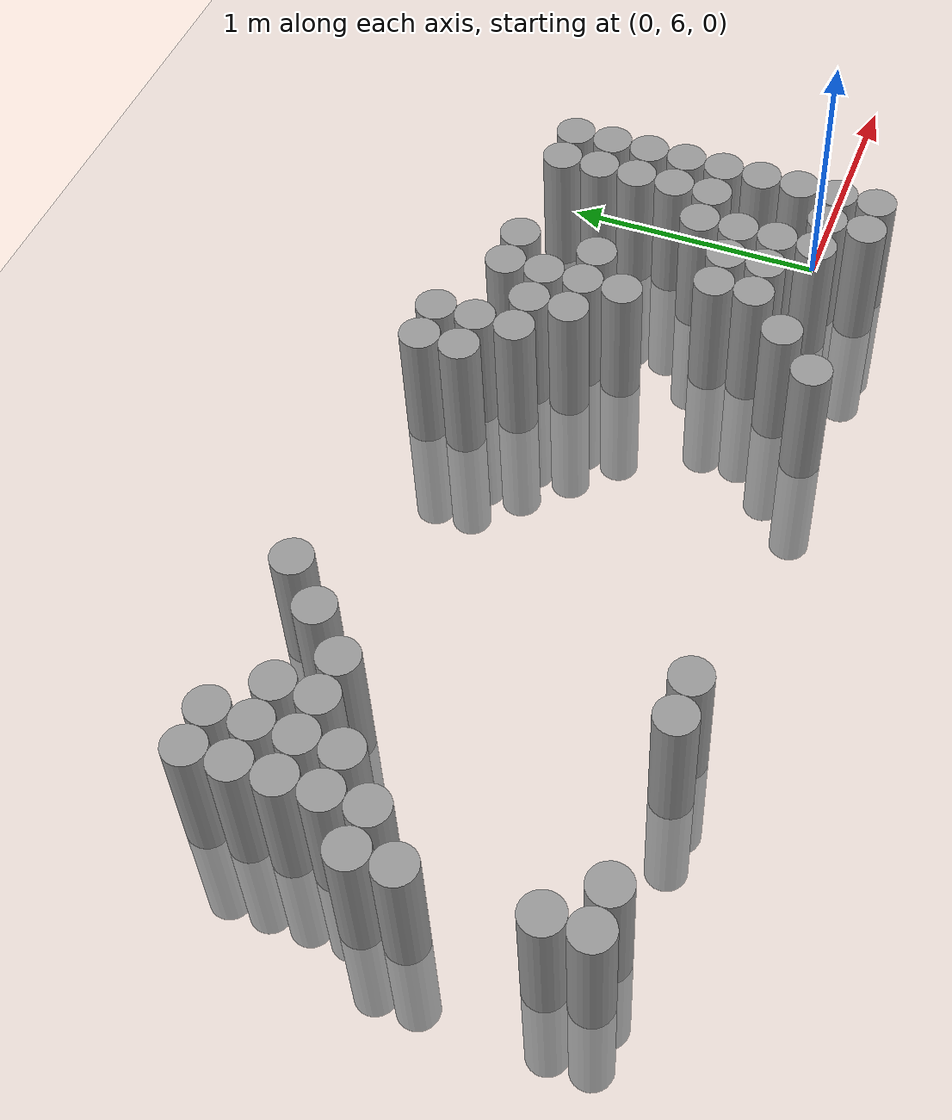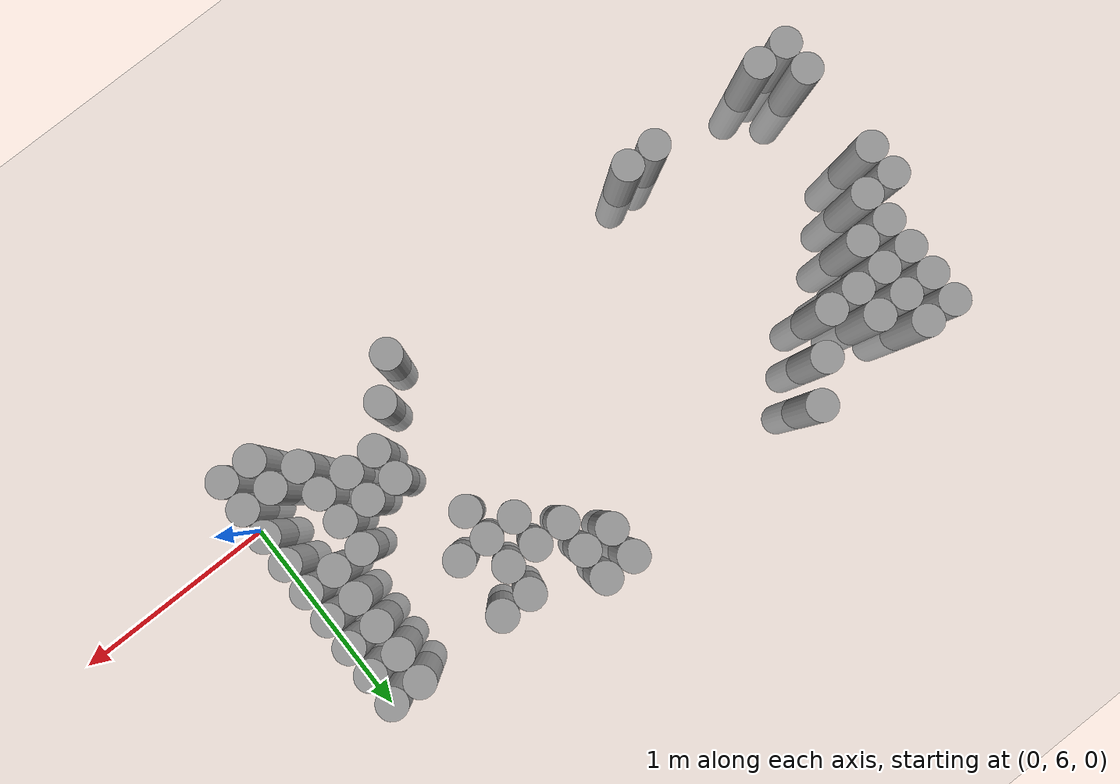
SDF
<sdf version="1.6">
 <world name="default">
  <model name="ground_plane">
   <static>1</static>
   <static>1</static>
   <link name="link">
    <collision name="collision">
     <geometry><plane><normal>0 0 1</normal><size>100 100</size></plane></geometry>
     <surface><friction><ode><mu>100</mu><mu2>50</mu2></ode></friction></surface>
    </collision>
    <visual name="visual">
     <cast_shadows>0</cast_shadows>
     <geometry><plane><normal>0 0 1</normal><size>100 100</size></plane></geometry>
     <material>
      <script><uri>file://media/materials/scripts/gazebo.material</uri><name>Gazebo/Grey</name></script>
     </material>
    </visual>
   </link>
  </model>
  <model name="unit_cylinder_172">
   <static>1</static>
   <pose>-3.225000 5.775000 0.000000 0.000000 0.000000 0.000000</pose>
   <link name="link">
    <inertial>
     <mass>1</mass>
     <inertia><ixx>0.145833</ixx><ixy>0</ixy><ixz>0</ixz><iyy>0.145833</iyy><iyz>0</iyz><izz>0.125</izz></inertia>
    </inertial>
    <collision name="collision">
     <geometry><cylinder><radius>0.075000</radius><length>1</length></cylinder></geometry>
    </collision>
    <visual name="visual">
     <geometry><cylinder><radius>0.075000</radius><length>1</length></cylinder></geometry>
     <material>
      <script><name>Gazebo/Grey</name><uri>file://media/materials/scripts/gazebo.material</uri></script>
     </material>
    </visual>
   </link>
  </model>
  <model name="unit_cylinder_173">
   <static>1</static>
   <pose>-3.225000 5.925000 0.000000 0.000000 0.000000 0.000000</pose>
   <link name="link">
    <inertial>
     <mass>1</mass>
     <inertia><ixx>0.145833</ixx><ixy>0</ixy><ixz>0</ixz><iyy>0.145833</iyy><iyz>0</iyz><izz>0.125</izz></inertia>
    </inertial>
    <collision name="collision">
     <geometry><cylinder><radius>0.075000</radius><length>1</length></cylinder></geometry>
    </collision>
    <visual name="visual">
     <geometry><cylinder><radius>0.075000</radius><length>1</length></cylinder></geometry>
     <material>
      <script><name>Gazebo/Grey</name><uri>file://media/materials/scripts/gazebo.material</uri></script>
     </material>
    </visual>
   </link>
  </model>
  <model name="unit_cylinder_174">
   <static>1</static>
   <pose>-3.225000 6.375000 0.000000 0.000000 0.000000 0.000000</pose>
   <link name="link">
    <inertial>
     <mass>1</mass>
     <inertia><ixx>0.145833</ixx><ixy>0</ixy><ixz>0</ixz><iyy>0.145833</iyy><iyz>0</iyz><izz>0.125</izz></inertia>
    </inertial>
    <collision name="collision">
     <geometry><cylinder><radius>0.075000</radius><length>1</length></cylinder></geometry>
    </collision>
    <visual name="visual">
     <geometry><cylinder><radius>0.075000</radius><length>1</length></cylinder></geometry>
     <material>
      <script><name>Gazebo/Grey</name><uri>file://media/materials/scripts/gazebo.material</uri></script>
     </material>
    </visual>
   </link>
  </model>
  <model name="unit_cylinder_175">
   <static>1</static>
   <pose>-3.225000 6.525000 0.000000 0.000000 0.000000 0.000000</pose>
   <link name="link">
    <inertial>
     <mass>1</mass>
     <inertia><ixx>0.145833</ixx><ixy>0</ixy><ixz>0</ixz><iyy>0.145833</iyy><iyz>0</iyz><izz>0.125</izz></inertia>
    </inertial>
    <collision name="collision">
     <geometry><cylinder><radius>0.075000</radius><length>1</length></cylinder></geometry>
    </collision>
    <visual name="visual">
     <geometry><cylinder><radius>0.075000</radius><length>1</length></cylinder></geometry>
     <material>
      <script><name>Gazebo/Grey</name><uri>file://media/materials/scripts/gazebo.material</uri></script>
     </material>
    </visual>
   </link>
  </model>
  <model name="unit_cylinder_178">
   <static>1</static>
   <pose>-3.075000 5.775000 0.000000 0.000000 0.000000 0.000000</pose>
   <link name="link">
    <inertial>
     <mass>1</mass>
     <inertia><ixx>0.145833</ixx><ixy>0</ixy><ixz>0</ixz><iyy>0.145833</iyy><iyz>0</iyz><izz>0.125</izz></inertia>
    </inertial>
    <collision name="collision">
     <geometry><cylinder><radius>0.075000</radius><length>1</length></cylinder></geometry>
    </collision>
    <visual name="visual">
     <geometry><cylinder><radius>0.075000</radius><length>1</length></cylinder></geometry>
     <material>
      <script><name>Gazebo/Grey</name><uri>file://media/materials/scripts/gazebo.material</uri></script>
     </material>
    </visual>
   </link>
  </model>
  <model name="unit_cylinder_179">
   <static>1</static>
   <pose>-3.075000 6.525000 0.000000 0.000000 0.000000 0.000000</pose>
   <link name="link">
    <inertial>
     <mass>1</mass>
     <inertia><ixx>0.145833</ixx><ixy>0</ixy><ixz>0</ixz><iyy>0.145833</iyy><iyz>0</iyz><izz>0.125</izz></inertia>
    </inertial>
    <collision name="collision">
     <geometry><cylinder><radius>0.075000</radius><length>1</length></cylinder></geometry>
    </collision>
    <visual name="visual">
     <geometry><cylinder><radius>0.075000</radius><length>1</length></cylinder></geometry>
     <material>
      <script><name>Gazebo/Grey</name><uri>file://media/materials/scripts/gazebo.material</uri></script>
     </material>
    </visual>
   </link>
  </model>
  <model name="unit_cylinder_180">
   <static>1</static>
   <pose>-3.075000 6.675000 0.000000 0.000000 0.000000 0.000000</pose>
   <link name="link">
    <inertial>
     <mass>1</mass>
     <inertia><ixx>0.145833</ixx><ixy>0</ixy><ixz>0</ixz><iyy>0.145833</iyy><iyz>0</iyz><izz>0.125</izz></inertia>
    </inertial>
    <collision name="collision">
     <geometry><cylinder><radius>0.075000</radius><length>1</length></cylinder></geometry>
    </collision>
    <visual name="visual">
     <geometry><cylinder><radius>0.075000</radius><length>1</length></cylinder></geometry>
     <material>
      <script><name>Gazebo/Grey</name><uri>file://media/materials/scripts/gazebo.material</uri></script>
     </material>
    </visual>
   </link>
  </model>
  <model name="unit_cylinder_181">
   <static>1</static>
   <pose>-3.075000 6.825000 0.000000 0.000000 0.000000 0.000000</pose>
   <link name="link">
    <inertial>
     <mass>1</mass>
     <inertia><ixx>0.145833</ixx><ixy>0</ixy><ixz>0</ixz><iyy>0.145833</iyy><iyz>0</iyz><izz>0.125</izz></inertia>
    </inertial>
    <collision name="collision">
     <geometry><cylinder><radius>0.075000</radius><length>1</length></cylinder></geometry>
    </collision>
    <visual name="visual">
     <geometry><cylinder><radius>0.075000</radius><length>1</length></cylinder></geometry>
     <material>
      <script><name>Gazebo/Grey</name><uri>file://media/materials/scripts/gazebo.material</uri></script>
     </material>
    </visual>
   </link>
  </model>
  <model name="unit_cylinder_182">
   <static>1</static>
   <pose>-3.075000 6.975000 0.000000 0.000000 0.000000 0.000000</pose>
   <link name="link">
    <inertial>
     <mass>1</mass>
     <inertia><ixx>0.145833</ixx><ixy>0</ixy><ixz>0</ixz><iyy>0.145833</iyy><iyz>0</iyz><izz>0.125</izz></inertia>
    </inertial>
    <collision name="collision">
     <geometry><cylinder><radius>0.075000</radius><length>1</length></cylinder></geometry>
    </collision>
    <visual name="visual">
     <geometry><cylinder><radius>0.075000</radius><length>1</length></cylinder></geometry>
     <material>
      <script><name>Gazebo/Grey</name><uri>file://media/materials/scripts/gazebo.material</uri></script>
     </material>
    </visual>
   </link>
  </model>
  <model name="unit_cylinder_183">
   <static>1</static>
   <pose>-3.075000 7.125000 0.000000 0.000000 0.000000 0.000000</pose>
   <link name="link">
    <inertial>
     <mass>1</mass>
     <inertia><ixx>0.145833</ixx><ixy>0</ixy><ixz>0</ixz><iyy>0.145833</iyy><iyz>0</iyz><izz>0.125</izz></inertia>
    </inertial>
    <collision name="collision">
     <geometry><cylinder><radius>0.075000</radius><length>1</length></cylinder></geometry>
    </collision>
    <visual name="visual">
     <geometry><cylinder><radius>0.075000</radius><length>1</length></cylinder></geometry>
     <material>
      <script><name>Gazebo/Grey</name><uri>file://media/materials/scripts/gazebo.material</uri></script>
     </material>
    </visual>
   </link>
  </model>
  <model name="unit_cylinder_190">
   <static>1</static>
   <pose>-2.925000 6.675000 0.000000 0.000000 0.000000 0.000000</pose>
   <link name="link">
    <inertial>
     <mass>1</mass>
     <inertia><ixx>0.145833</ixx><ixy>0</ixy><ixz>0</ixz><iyy>0.145833</iyy><iyz>0</iyz><izz>0.125</izz></inertia>
    </inertial>
    <collision name="collision">
     <geometry><cylinder><radius>0.075000</radius><length>1</length></cylinder></geometry>
    </collision>
    <visual name="visual">
     <geometry><cylinder><radius>0.075000</radius><length>1</length></cylinder></geometry>
     <material>
      <script><name>Gazebo/Grey</name><uri>file://media/materials/scripts/gazebo.material</uri></script>
     </material>
    </visual>
   </link>
  </model>
  <model name="unit_cylinder_191">
   <static>1</static>
   <pose>-2.925000 6.825000 0.000000 0.000000 0.000000 0.000000</pose>
   <link name="link">
    <inertial>
     <mass>1</mass>
     <inertia><ixx>0.145833</ixx><ixy>0</ixy><ixz>0</ixz><iyy>0.145833</iyy><iyz>0</iyz><izz>0.125</izz></inertia>
    </inertial>
    <collision name="collision">
     <geometry><cylinder><radius>0.075000</radius><length>1</length></cylinder></geometry>
    </collision>
    <visual name="visual">
     <geometry><cylinder><radius>0.075000</radius><length>1</length></cylinder></geometry>
     <material>
      <script><name>Gazebo/Grey</name><uri>file://media/materials/scripts/gazebo.material</uri></script>
     </material>
    </visual>
   </link>
  </model>
  <model name="unit_cylinder_192">
   <static>1</static>
   <pose>-2.925000 6.975000 0.000000 0.000000 0.000000 0.000000</pose>
   <link name="link">
    <inertial>
     <mass>1</mass>
     <inertia><ixx>0.145833</ixx><ixy>0</ixy><ixz>0</ixz><iyy>0.145833</iyy><iyz>0</iyz><izz>0.125</izz></inertia>
    </inertial>
    <collision name="collision">
     <geometry><cylinder><radius>0.075000</radius><length>1</length></cylinder></geometry>
    </collision>
    <visual name="visual">
     <geometry><cylinder><radius>0.075000</radius><length>1</length></cylinder></geometry>
     <material>
      <script><name>Gazebo/Grey</name><uri>file://media/materials/scripts/gazebo.material</uri></script>
     </material>
    </visual>
   </link>
  </model>
  <model name="unit_cylinder_193">
   <static>1</static>
   <pose>-2.925000 7.125000 0.000000 0.000000 0.000000 0.000000</pose>
   <link name="link">
    <inertial>
     <mass>1</mass>
     <inertia><ixx>0.145833</ixx><ixy>0</ixy><ixz>0</ixz><iyy>0.145833</iyy><iyz>0</iyz><izz>0.125</izz></inertia>
    </inertial>
    <collision name="collision">
     <geometry><cylinder><radius>0.075000</radius><length>1</length></cylinder></geometry>
    </collision>
    <visual name="visual">
     <geometry><cylinder><radius>0.075000</radius><length>1</length></cylinder></geometry>
     <material>
      <script><name>Gazebo/Grey</name><uri>file://media/materials/scripts/gazebo.material</uri></script>
     </material>
    </visual>
   </link>
  </model>
  <model name="unit_cylinder_197">
   <static>1</static>
   <pose>-2.775000 6.825000 0.000000 0.000000 0.000000 0.000000</pose>
   <link name="link">
    <inertial>
     <mass>1</mass>
     <inertia><ixx>0.145833</ixx><ixy>0</ixy><ixz>0</ixz><iyy>0.145833</iyy><iyz>0</iyz><izz>0.125</izz></inertia>
    </inertial>
    <collision name="collision">
     <geometry><cylinder><radius>0.075000</radius><length>1</length></cylinder></geometry>
    </collision>
    <visual name="visual">
     <geometry><cylinder><radius>0.075000</radius><length>1</length></cylinder></geometry>
     <material>
      <script><name>Gazebo/Grey</name><uri>file://media/materials/scripts/gazebo.material</uri></script>
     </material>
    </visual>
   </link>
  </model>
  <model name="unit_cylinder_198">
   <static>1</static>
   <pose>-2.775000 6.975000 0.000000 0.000000 0.000000 0.000000</pose>
   <link name="link">
    <inertial>
     <mass>1</mass>
     <inertia><ixx>0.145833</ixx><ixy>0</ixy><ixz>0</ixz><iyy>0.145833</iyy><iyz>0</iyz><izz>0.125</izz></inertia>
    </inertial>
    <collision name="collision">
     <geometry><cylinder><radius>0.075000</radius><length>1</length></cylinder></geometry>
    </collision>
    <visual name="visual">
     <geometry><cylinder><radius>0.075000</radius><length>1</length></cylinder></geometry>
     <material>
      <script><name>Gazebo/Grey</name><uri>file://media/materials/scripts/gazebo.material</uri></script>
     </material>
    </visual>
   </link>
  </model>
  <model name="unit_cylinder_203">
   <static>1</static>
   <pose>-2.625000 6.825000 0.000000 0.000000 0.000000 0.000000</pose>
   <link name="link">
    <inertial>
     <mass>1</mass>
     <inertia><ixx>0.145833</ixx><ixy>0</ixy><ixz>0</ixz><iyy>0.145833</iyy><iyz>0</iyz><izz>0.125</izz></inertia>
    </inertial>
    <collision name="collision">
     <geometry><cylinder><radius>0.075000</radius><length>1</length></cylinder></geometry>
    </collision>
    <visual name="visual">
     <geometry><cylinder><radius>0.075000</radius><length>1</length></cylinder></geometry>
     <material>
      <script><name>Gazebo/Grey</name><uri>file://media/materials/scripts/gazebo.material</uri></script>
     </material>
    </visual>
   </link>
  </model>
  <model name="unit_cylinder_210">
   <static>1</static>
   <pose>-2.475000 5.775000 0.000000 0.000000 0.000000 0.000000</pose>
   <link name="link">
    <inertial>
     <mass>1</mass>
     <inertia><ixx>0.145833</ixx><ixy>0</ixy><ixz>0</ixz><iyy>0.145833</iyy><iyz>0</iyz><izz>0.125</izz></inertia>
    </inertial>
    <collision name="collision">
     <geometry><cylinder><radius>0.075000</radius><length>1</length></cylinder></geometry>
    </collision>
    <visual name="visual">
     <geometry><cylinder><radius>0.075000</radius><length>1</length></cylinder></geometry>
     <material>
      <script><name>Gazebo/Grey</name><uri>file://media/materials/scripts/gazebo.material</uri></script>
     </material>
    </visual>
   </link>
  </model>
  <model name="unit_cylinder_211">
   <static>1</static>
   <pose>-2.475000 6.975000 0.000000 0.000000 0.000000 0.000000</pose>
   <link name="link">
    <inertial>
     <mass>1</mass>
     <inertia><ixx>0.145833</ixx><ixy>0</ixy><ixz>0</ixz><iyy>0.145833</iyy><iyz>0</iyz><izz>0.125</izz></inertia>
    </inertial>
    <collision name="collision">
     <geometry><cylinder><radius>0.075000</radius><length>1</length></cylinder></geometry>
    </collision>
    <visual name="visual">
     <geometry><cylinder><radius>0.075000</radius><length>1</length></cylinder></geometry>
     <material>
      <script><name>Gazebo/Grey</name><uri>file://media/materials/scripts/gazebo.material</uri></script>
     </material>
    </visual>
   </link>
  </model>
  <model name="unit_cylinder_217">
   <static>1</static>
   <pose>-2.325000 5.775000 0.000000 0.000000 0.000000 0.000000</pose>
   <link name="link">
    <inertial>
     <mass>1</mass>
     <inertia><ixx>0.145833</ixx><ixy>0</ixy><ixz>0</ixz><iyy>0.145833</iyy><iyz>0</iyz><izz>0.125</izz></inertia>
    </inertial>
    <collision name="collision">
     <geometry><cylinder><radius>0.075000</radius><length>1</length></cylinder></geometry>
    </collision>
    <visual name="visual">
     <geometry><cylinder><radius>0.075000</radius><length>1</length></cylinder></geometry>
     <material>
      <script><name>Gazebo/Grey</name><uri>file://media/materials/scripts/gazebo.material</uri></script>
     </material>
    </visual>
   </link>
  </model>
  <model name="unit_cylinder_218">
   <static>1</static>
   <pose>-2.325000 7.125000 0.000000 0.000000 0.000000 0.000000</pose>
   <link name="link">
    <inertial>
     <mass>1</mass>
     <inertia><ixx>0.145833</ixx><ixy>0</ixy><ixz>0</ixz><iyy>0.145833</iyy><iyz>0</iyz><izz>0.125</izz></inertia>
    </inertial>
    <collision name="collision">
     <geometry><cylinder><radius>0.075000</radius><length>1</length></cylinder></geometry>
    </collision>
    <visual name="visual">
     <geometry><cylinder><radius>0.075000</radius><length>1</length></cylinder></geometry>
     <material>
      <script><name>Gazebo/Grey</name><uri>file://media/materials/scripts/gazebo.material</uri></script>
     </material>
    </visual>
   </link>
  </model>
  <model name="unit_cylinder_222">
   <static>1</static>
   <pose>-1.275000 6.975000 0.000000 0.000000 0.000000 0.000000</pose>
   <link name="link">
    <inertial>
     <mass>1</mass>
     <inertia><ixx>0.145833</ixx><ixy>0</ixy><ixz>0</ixz><iyy>0.145833</iyy><iyz>0</iyz><izz>0.125</izz></inertia>
    </inertial>
    <collision name="collision">
     <geometry><cylinder><radius>0.075000</radius><length>1</length></cylinder></geometry>
    </collision>
    <visual name="visual">
     <geometry><cylinder><radius>0.075000</radius><length>1</length></cylinder></geometry>
     <material>
      <script><name>Gazebo/Grey</name><uri>file://media/materials/scripts/gazebo.material</uri></script>
     </material>
    </visual>
   </link>
  </model>
  <model name="unit_cylinder_223">
   <static>1</static>
   <pose>-1.275000 7.125000 0.000000 0.000000 0.000000 0.000000</pose>
   <link name="link">
    <inertial>
     <mass>1</mass>
     <inertia><ixx>0.145833</ixx><ixy>0</ixy><ixz>0</ixz><iyy>0.145833</iyy><iyz>0</iyz><izz>0.125</izz></inertia>
    </inertial>
    <collision name="collision">
     <geometry><cylinder><radius>0.075000</radius><length>1</length></cylinder></geometry>
    </collision>
    <visual name="visual">
     <geometry><cylinder><radius>0.075000</radius><length>1</length></cylinder></geometry>
     <material>
      <script><name>Gazebo/Grey</name><uri>file://media/materials/scripts/gazebo.material</uri></script>
     </material>
    </visual>
   </link>
  </model>
  <model name="unit_cylinder_227">
   <static>1</static>
   <pose>-1.125000 6.825000 0.000000 0.000000 0.000000 0.000000</pose>
   <link name="link">
    <inertial>
     <mass>1</mass>
     <inertia><ixx>0.145833</ixx><ixy>0</ixy><ixz>0</ixz><iyy>0.145833</iyy><iyz>0</iyz><izz>0.125</izz></inertia>
    </inertial>
    <collision name="collision">
     <geometry><cylinder><radius>0.075000</radius><length>1</length></cylinder></geometry>
    </collision>
    <visual name="visual">
     <geometry><cylinder><radius>0.075000</radius><length>1</length></cylinder></geometry>
     <material>
      <script><name>Gazebo/Grey</name><uri>file://media/materials/scripts/gazebo.material</uri></script>
     </material>
    </visual>
   </link>
  </model>
  <model name="unit_cylinder_228">
   <static>1</static>
   <pose>-1.125000 6.975000 0.000000 0.000000 0.000000 0.000000</pose>
   <link name="link">
    <inertial>
     <mass>1</mass>
     <inertia><ixx>0.145833</ixx><ixy>0</ixy><ixz>0</ixz><iyy>0.145833</iyy><iyz>0</iyz><izz>0.125</izz></inertia>
    </inertial>
    <collision name="collision">
     <geometry><cylinder><radius>0.075000</radius><length>1</length></cylinder></geometry>
    </collision>
    <visual name="visual">
     <geometry><cylinder><radius>0.075000</radius><length>1</length></cylinder></geometry>
     <material>
      <script><name>Gazebo/Grey</name><uri>file://media/materials/scripts/gazebo.material</uri></script>
     </material>
    </visual>
   </link>
  </model>
  <model name="unit_cylinder_229">
   <static>1</static>
   <pose>-1.125000 7.125000 0.000000 0.000000 0.000000 0.000000</pose>
   <link name="link">
    <inertial>
     <mass>1</mass>
     <inertia><ixx>0.145833</ixx><ixy>0</ixy><ixz>0</ixz><iyy>0.145833</iyy><iyz>0</iyz><izz>0.125</izz></inertia>
    </inertial>
    <collision name="collision">
     <geometry><cylinder><radius>0.075000</radius><length>1</length></cylinder></geometry>
    </collision>
    <visual name="visual">
     <geometry><cylinder><radius>0.075000</radius><length>1</length></cylinder></geometry>
     <material>
      <script><name>Gazebo/Grey</name><uri>file://media/materials/scripts/gazebo.material</uri></script>
     </material>
    </visual>
   </link>
  </model>
  <model name="unit_cylinder_232">
   <static>1</static>
   <pose>-0.975000 5.775000 0.000000 0.000000 0.000000 0.000000</pose>
   <link name="link">
    <inertial>
     <mass>1</mass>
     <inertia><ixx>0.145833</ixx><ixy>0</ixy><ixz>0</ixz><iyy>0.145833</iyy><iyz>0</iyz><izz>0.125</izz></inertia>
    </inertial>
    <collision name="collision">
     <geometry><cylinder><radius>0.075000</radius><length>1</length></cylinder></geometry>
    </collision>
    <visual name="visual">
     <geometry><cylinder><radius>0.075000</radius><length>1</length></cylinder></geometry>
     <material>
      <script><name>Gazebo/Grey</name><uri>file://media/materials/scripts/gazebo.material</uri></script>
     </material>
    </visual>
   </link>
  </model>
  <model name="unit_cylinder_233">
   <static>1</static>
   <pose>-0.975000 6.675000 0.000000 0.000000 0.000000 0.000000</pose>
   <link name="link">
    <inertial>
     <mass>1</mass>
     <inertia><ixx>0.145833</ixx><ixy>0</ixy><ixz>0</ixz><iyy>0.145833</iyy><iyz>0</iyz><izz>0.125</izz></inertia>
    </inertial>
    <collision name="collision">
     <geometry><cylinder><radius>0.075000</radius><length>1</length></cylinder></geometry>
    </collision>
    <visual name="visual">
     <geometry><cylinder><radius>0.075000</radius><length>1</length></cylinder></geometry>
     <material>
      <script><name>Gazebo/Grey</name><uri>file://media/materials/scripts/gazebo.material</uri></script>
     </material>
    </visual>
   </link>
  </model>
  <model name="unit_cylinder_234">
   <static>1</static>
   <pose>-0.975000 6.825000 0.000000 0.000000 0.000000 0.000000</pose>
   <link name="link">
    <inertial>
     <mass>1</mass>
     <inertia><ixx>0.145833</ixx><ixy>0</ixy><ixz>0</ixz><iyy>0.145833</iyy><iyz>0</iyz><izz>0.125</izz></inertia>
    </inertial>
    <collision name="collision">
     <geometry><cylinder><radius>0.075000</radius><length>1</length></cylinder></geometry>
    </collision>
    <visual name="visual">
     <geometry><cylinder><radius>0.075000</radius><length>1</length></cylinder></geometry>
     <material>
      <script><name>Gazebo/Grey</name><uri>file://media/materials/scripts/gazebo.material</uri></script>
     </material>
    </visual>
   </link>
  </model>
  <model name="unit_cylinder_237">
   <static>1</static>
   <pose>-0.825000 5.925000 0.000000 0.000000 0.000000 0.000000</pose>
   <link name="link">
    <inertial>
     <mass>1</mass>
     <inertia><ixx>0.145833</ixx><ixy>0</ixy><ixz>0</ixz><iyy>0.145833</iyy><iyz>0</iyz><izz>0.125</izz></inertia>
    </inertial>
    <collision name="collision">
     <geometry><cylinder><radius>0.075000</radius><length>1</length></cylinder></geometry>
    </collision>
    <visual name="visual">
     <geometry><cylinder><radius>0.075000</radius><length>1</length></cylinder></geometry>
     <material>
      <script><name>Gazebo/Grey</name><uri>file://media/materials/scripts/gazebo.material</uri></script>
     </material>
    </visual>
   </link>
  </model>
  <model name="unit_cylinder_238">
   <static>1</static>
   <pose>-0.825000 6.525000 0.000000 0.000000 0.000000 0.000000</pose>
   <link name="link">
    <inertial>
     <mass>1</mass>
     <inertia><ixx>0.145833</ixx><ixy>0</ixy><ixz>0</ixz><iyy>0.145833</iyy><iyz>0</iyz><izz>0.125</izz></inertia>
    </inertial>
    <collision name="collision">
     <geometry><cylinder><radius>0.075000</radius><length>1</length></cylinder></geometry>
    </collision>
    <visual name="visual">
     <geometry><cylinder><radius>0.075000</radius><length>1</length></cylinder></geometry>
     <material>
      <script><name>Gazebo/Grey</name><uri>file://media/materials/scripts/gazebo.material</uri></script>
     </material>
    </visual>
   </link>
  </model>
  <model name="unit_cylinder_239">
   <static>1</static>
   <pose>-0.825000 6.675000 0.000000 0.000000 0.000000 0.000000</pose>
   <link name="link">
    <inertial>
     <mass>1</mass>
     <inertia><ixx>0.145833</ixx><ixy>0</ixy><ixz>0</ixz><iyy>0.145833</iyy><iyz>0</iyz><izz>0.125</izz></inertia>
    </inertial>
    <collision name="collision">
     <geometry><cylinder><radius>0.075000</radius><length>1</length></cylinder></geometry>
    </collision>
    <visual name="visual">
     <geometry><cylinder><radius>0.075000</radius><length>1</length></cylinder></geometry>
     <material>
      <script><name>Gazebo/Grey</name><uri>file://media/materials/scripts/gazebo.material</uri></script>
     </material>
    </visual>
   </link>
  </model>
  <model name="unit_cylinder_240">
   <static>1</static>
   <pose>-0.825000 6.825000 0.000000 0.000000 0.000000 0.000000</pose>
   <link name="link">
    <inertial>
     <mass>1</mass>
     <inertia><ixx>0.145833</ixx><ixy>0</ixy><ixz>0</ixz><iyy>0.145833</iyy><iyz>0</iyz><izz>0.125</izz></inertia>
    </inertial>
    <collision name="collision">
     <geometry><cylinder><radius>0.075000</radius><length>1</length></cylinder></geometry>
    </collision>
    <visual name="visual">
     <geometry><cylinder><radius>0.075000</radius><length>1</length></cylinder></geometry>
     <material>
      <script><name>Gazebo/Grey</name><uri>file://media/materials/scripts/gazebo.material</uri></script>
     </material>
    </visual>
   </link>
  </model>
  <model name="unit_cylinder_241">
   <static>1</static>
   <pose>-0.825000 6.975000 0.000000 0.000000 0.000000 0.000000</pose>
   <link name="link">
    <inertial>
     <mass>1</mass>
     <inertia><ixx>0.145833</ixx><ixy>0</ixy><ixz>0</ixz><iyy>0.145833</iyy><iyz>0</iyz><izz>0.125</izz></inertia>
    </inertial>
    <collision name="collision">
     <geometry><cylinder><radius>0.075000</radius><length>1</length></cylinder></geometry>
    </collision>
    <visual name="visual">
     <geometry><cylinder><radius>0.075000</radius><length>1</length></cylinder></geometry>
     <material>
      <script><name>Gazebo/Grey</name><uri>file://media/materials/scripts/gazebo.material</uri></script>
     </material>
    </visual>
   </link>
  </model>
  <model name="unit_cylinder_245">
   <static>1</static>
   <pose>-0.675000 6.075000 0.000000 0.000000 0.000000 0.000000</pose>
   <link name="link">
    <inertial>
     <mass>1</mass>
     <inertia><ixx>0.145833</ixx><ixy>0</ixy><ixz>0</ixz><iyy>0.145833</iyy><iyz>0</iyz><izz>0.125</izz></inertia>
    </inertial>
    <collision name="collision">
     <geometry><cylinder><radius>0.075000</radius><length>1</length></cylinder></geometry>
    </collision>
    <visual name="visual">
     <geometry><cylinder><radius>0.075000</radius><length>1</length></cylinder></geometry>
     <material>
      <script><name>Gazebo/Grey</name><uri>file://media/materials/scripts/gazebo.material</uri></script>
     </material>
    </visual>
   </link>
  </model>
  <model name="unit_cylinder_246">
   <static>1</static>
   <pose>-0.675000 6.225000 0.000000 0.000000 0.000000 0.000000</pose>
   <link name="link">
    <inertial>
     <mass>1</mass>
     <inertia><ixx>0.145833</ixx><ixy>0</ixy><ixz>0</ixz><iyy>0.145833</iyy><iyz>0</iyz><izz>0.125</izz></inertia>
    </inertial>
    <collision name="collision">
     <geometry><cylinder><radius>0.075000</radius><length>1</length></cylinder></geometry>
    </collision>
    <visual name="visual">
     <geometry><cylinder><radius>0.075000</radius><length>1</length></cylinder></geometry>
     <material>
      <script><name>Gazebo/Grey</name><uri>file://media/materials/scripts/gazebo.material</uri></script>
     </material>
    </visual>
   </link>
  </model>
  <model name="unit_cylinder_247">
   <static>1</static>
   <pose>-0.675000 6.675000 0.000000 0.000000 0.000000 0.000000</pose>
   <link name="link">
    <inertial>
     <mass>1</mass>
     <inertia><ixx>0.145833</ixx><ixy>0</ixy><ixz>0</ixz><iyy>0.145833</iyy><iyz>0</iyz><izz>0.125</izz></inertia>
    </inertial>
    <collision name="collision">
     <geometry><cylinder><radius>0.075000</radius><length>1</length></cylinder></geometry>
    </collision>
    <visual name="visual">
     <geometry><cylinder><radius>0.075000</radius><length>1</length></cylinder></geometry>
     <material>
      <script><name>Gazebo/Grey</name><uri>file://media/materials/scripts/gazebo.material</uri></script>
     </material>
    </visual>
   </link>
  </model>
  <model name="unit_cylinder_248">
   <static>1</static>
   <pose>-0.675000 6.975000 0.000000 0.000000 0.000000 0.000000</pose>
   <link name="link">
    <inertial>
     <mass>1</mass>
     <inertia><ixx>0.145833</ixx><ixy>0</ixy><ixz>0</ixz><iyy>0.145833</iyy><iyz>0</iyz><izz>0.125</izz></inertia>
    </inertial>
    <collision name="collision">
     <geometry><cylinder><radius>0.075000</radius><length>1</length></cylinder></geometry>
    </collision>
    <visual name="visual">
     <geometry><cylinder><radius>0.075000</radius><length>1</length></cylinder></geometry>
     <material>
      <script><name>Gazebo/Grey</name><uri>file://media/materials/scripts/gazebo.material</uri></script>
     </material>
    </visual>
   </link>
  </model>
  <model name="unit_cylinder_250">
   <static>1</static>
   <pose>-0.525000 6.075000 0.000000 0.000000 0.000000 0.000000</pose>
   <link name="link">
    <inertial>
     <mass>1</mass>
     <inertia><ixx>0.145833</ixx><ixy>0</ixy><ixz>0</ixz><iyy>0.145833</iyy><iyz>0</iyz><izz>0.125</izz></inertia>
    </inertial>
    <collision name="collision">
     <geometry><cylinder><radius>0.075000</radius><length>1</length></cylinder></geometry>
    </collision>
    <visual name="visual">
     <geometry><cylinder><radius>0.075000</radius><length>1</length></cylinder></geometry>
     <material>
      <script><name>Gazebo/Grey</name><uri>file://media/materials/scripts/gazebo.material</uri></script>
     </material>
    </visual>
   </link>
  </model>
  <model name="unit_cylinder_251">
   <static>1</static>
   <pose>-0.525000 6.225000 0.000000 0.000000 0.000000 0.000000</pose>
   <link name="link">
    <inertial>
     <mass>1</mass>
     <inertia><ixx>0.145833</ixx><ixy>0</ixy><ixz>0</ixz><iyy>0.145833</iyy><iyz>0</iyz><izz>0.125</izz></inertia>
    </inertial>
    <collision name="collision">
     <geometry><cylinder><radius>0.075000</radius><length>1</length></cylinder></geometry>
    </collision>
    <visual name="visual">
     <geometry><cylinder><radius>0.075000</radius><length>1</length></cylinder></geometry>
     <material>
      <script><name>Gazebo/Grey</name><uri>file://media/materials/scripts/gazebo.material</uri></script>
     </material>
    </visual>
   </link>
  </model>
  <model name="unit_cylinder_252">
   <static>1</static>
   <pose>-0.375000 5.925000 0.000000 0.000000 0.000000 0.000000</pose>
   <link name="link">
    <inertial>
     <mass>1</mass>
     <inertia><ixx>0.145833</ixx><ixy>0</ixy><ixz>0</ixz><iyy>0.145833</iyy><iyz>0</iyz><izz>0.125</izz></inertia>
    </inertial>
    <collision name="collision">
     <geometry><cylinder><radius>0.075000</radius><length>1</length></cylinder></geometry>
    </collision>
    <visual name="visual">
     <geometry><cylinder><radius>0.075000</radius><length>1</length></cylinder></geometry>
     <material>
      <script><name>Gazebo/Grey</name><uri>file://media/materials/scripts/gazebo.material</uri></script>
     </material>
    </visual>
   </link>
  </model>
  <model name="unit_cylinder_253">
   <static>1</static>
   <pose>-0.375000 6.075000 0.000000 0.000000 0.000000 0.000000</pose>
   <link name="link">
    <inertial>
     <mass>1</mass>
     <inertia><ixx>0.145833</ixx><ixy>0</ixy><ixz>0</ixz><iyy>0.145833</iyy><iyz>0</iyz><izz>0.125</izz></inertia>
    </inertial>
    <collision name="collision">
     <geometry><cylinder><radius>0.075000</radius><length>1</length></cylinder></geometry>
    </collision>
    <visual name="visual">
     <geometry><cylinder><radius>0.075000</radius><length>1</length></cylinder></geometry>
     <material>
      <script><name>Gazebo/Grey</name><uri>file://media/materials/scripts/gazebo.material</uri></script>
     </material>
    </visual>
   </link>
  </model>
  <model name="unit_cylinder_254">
   <static>1</static>
   <pose>-0.375000 6.225000 0.000000 0.000000 0.000000 0.000000</pose>
   <link name="link">
    <inertial>
     <mass>1</mass>
     <inertia><ixx>0.145833</ixx><ixy>0</ixy><ixz>0</ixz><iyy>0.145833</iyy><iyz>0</iyz><izz>0.125</izz></inertia>
    </inertial>
    <collision name="collision">
     <geometry><cylinder><radius>0.075000</radius><length>1</length></cylinder></geometry>
    </collision>
    <visual name="visual">
     <geometry><cylinder><radius>0.075000</radius><length>1</length></cylinder></geometry>
     <material>
      <script><name>Gazebo/Grey</name><uri>file://media/materials/scripts/gazebo.material</uri></script>
     </material>
    </visual>
   </link>
  </model>
  <model name="unit_cylinder_255">
   <static>1</static>
   <pose>-0.375000 6.375000 0.000000 0.000000 0.000000 0.000000</pose>
   <link name="link">
    <inertial>
     <mass>1</mass>
     <inertia><ixx>0.145833</ixx><ixy>0</ixy><ixz>0</ixz><iyy>0.145833</iyy><iyz>0</iyz><izz>0.125</izz></inertia>
    </inertial>
    <collision name="collision">
     <geometry><cylinder><radius>0.075000</radius><length>1</length></cylinder></geometry>
    </collision>
    <visual name="visual">
     <geometry><cylinder><radius>0.075000</radius><length>1</length></cylinder></geometry>
     <material>
      <script><name>Gazebo/Grey</name><uri>file://media/materials/scripts/gazebo.material</uri></script>
     </material>
    </visual>
   </link>
  </model>
  <model name="unit_cylinder_259">
   <static>1</static>
   <pose>-0.225000 5.775000 0.000000 0.000000 0.000000 0.000000</pose>
   <link name="link">
    <inertial>
     <mass>1</mass>
     <inertia><ixx>0.145833</ixx><ixy>0</ixy><ixz>0</ixz><iyy>0.145833</iyy><iyz>0</iyz><izz>0.125</izz></inertia>
    </inertial>
    <collision name="collision">
     <geometry><cylinder><radius>0.075000</radius><length>1</length></cylinder></geometry>
    </collision>
    <visual name="visual">
     <geometry><cylinder><radius>0.075000</radius><length>1</length></cylinder></geometry>
     <material>
      <script><name>Gazebo/Grey</name><uri>file://media/materials/scripts/gazebo.material</uri></script>
     </material>
    </visual>
   </link>
  </model>
  <model name="unit_cylinder_260">
   <static>1</static>
   <pose>-0.225000 5.925000 0.000000 0.000000 0.000000 0.000000</pose>
   <link name="link">
    <inertial>
     <mass>1</mass>
     <inertia><ixx>0.145833</ixx><ixy>0</ixy><ixz>0</ixz><iyy>0.145833</iyy><iyz>0</iyz><izz>0.125</izz></inertia>
    </inertial>
    <collision name="collision">
     <geometry><cylinder><radius>0.075000</radius><length>1</length></cylinder></geometry>
    </collision>
    <visual name="visual">
     <geometry><cylinder><radius>0.075000</radius><length>1</length></cylinder></geometry>
     <material>
      <script><name>Gazebo/Grey</name><uri>file://media/materials/scripts/gazebo.material</uri></script>
     </material>
    </visual>
   </link>
  </model>
  <model name="unit_cylinder_261">
   <static>1</static>
   <pose>-0.225000 6.375000 0.000000 0.000000 0.000000 0.000000</pose>
   <link name="link">
    <inertial>
     <mass>1</mass>
     <inertia><ixx>0.145833</ixx><ixy>0</ixy><ixz>0</ixz><iyy>0.145833</iyy><iyz>0</iyz><izz>0.125</izz></inertia>
    </inertial>
    <collision name="collision">
     <geometry><cylinder><radius>0.075000</radius><length>1</length></cylinder></geometry>
    </collision>
    <visual name="visual">
     <geometry><cylinder><radius>0.075000</radius><length>1</length></cylinder></geometry>
     <material>
      <script><name>Gazebo/Grey</name><uri>file://media/materials/scripts/gazebo.material</uri></script>
     </material>
    </visual>
   </link>
  </model>
  <model name="unit_cylinder_262">
   <static>1</static>
   <pose>-0.225000 6.525000 0.000000 0.000000 0.000000 0.000000</pose>
   <link name="link">
    <inertial>
     <mass>1</mass>
     <inertia><ixx>0.145833</ixx><ixy>0</ixy><ixz>0</ixz><iyy>0.145833</iyy><iyz>0</iyz><izz>0.125</izz></inertia>
    </inertial>
    <collision name="collision">
     <geometry><cylinder><radius>0.075000</radius><length>1</length></cylinder></geometry>
    </collision>
    <visual name="visual">
     <geometry><cylinder><radius>0.075000</radius><length>1</length></cylinder></geometry>
     <material>
      <script><name>Gazebo/Grey</name><uri>file://media/materials/scripts/gazebo.material</uri></script>
     </material>
    </visual>
   </link>
  </model>
  <model name="unit_cylinder_263">
   <static>1</static>
   <pose>-0.225000 6.675000 0.000000 0.000000 0.000000 0.000000</pose>
   <link name="link">
    <inertial>
     <mass>1</mass>
     <inertia><ixx>0.145833</ixx><ixy>0</ixy><ixz>0</ixz><iyy>0.145833</iyy><iyz>0</iyz><izz>0.125</izz></inertia>
    </inertial>
    <collision name="collision">
     <geometry><cylinder><radius>0.075000</radius><length>1</length></cylinder></geometry>
    </collision>
    <visual name="visual">
     <geometry><cylinder><radius>0.075000</radius><length>1</length></cylinder></geometry>
     <material>
      <script><name>Gazebo/Grey</name><uri>file://media/materials/scripts/gazebo.material</uri></script>
     </material>
    </visual>
   </link>
  </model>
  <model name="unit_cylinder_264">
   <static>1</static>
   <pose>-0.225000 6.825000 0.000000 0.000000 0.000000 0.000000</pose>
   <link name="link">
    <inertial>
     <mass>1</mass>
     <inertia><ixx>0.145833</ixx><ixy>0</ixy><ixz>0</ixz><iyy>0.145833</iyy><iyz>0</iyz><izz>0.125</izz></inertia>
    </inertial>
    <collision name="collision">
     <geometry><cylinder><radius>0.075000</radius><length>1</length></cylinder></geometry>
    </collision>
    <visual name="visual">
     <geometry><cylinder><radius>0.075000</radius><length>1</length></cylinder></geometry>
     <material>
      <script><name>Gazebo/Grey</name><uri>file://media/materials/scripts/gazebo.material</uri></script>
     </material>
    </visual>
   </link>
  </model>
  <model name="unit_cylinder_265">
   <static>1</static>
   <pose>-0.225000 6.975000 0.000000 0.000000 0.000000 0.000000</pose>
   <link name="link">
    <inertial>
     <mass>1</mass>
     <inertia><ixx>0.145833</ixx><ixy>0</ixy><ixz>0</ixz><iyy>0.145833</iyy><iyz>0</iyz><izz>0.125</izz></inertia>
    </inertial>
    <collision name="collision">
     <geometry><cylinder><radius>0.075000</radius><length>1</length></cylinder></geometry>
    </collision>
    <visual name="visual">
     <geometry><cylinder><radius>0.075000</radius><length>1</length></cylinder></geometry>
     <material>
      <script><name>Gazebo/Grey</name><uri>file://media/materials/scripts/gazebo.material</uri></script>
     </material>
    </visual>
   </link>
  </model>
  <model name="unit_cylinder_278">
   <static>1</static>
   <pose>-0.075000 5.775000 0.000000 0.000000 0.000000 0.000000</pose>
   <link name="link">
    <inertial>
     <mass>1</mass>
     <inertia><ixx>0.145833</ixx><ixy>0</ixy><ixz>0</ixz><iyy>0.145833</iyy><iyz>0</iyz><izz>0.125</izz></inertia>
    </inertial>
    <collision name="collision">
     <geometry><cylinder><radius>0.075000</radius><length>1</length></cylinder></geometry>
    </collision>
    <visual name="visual">
     <geometry><cylinder><radius>0.075000</radius><length>1</length></cylinder></geometry>
     <material>
      <script><name>Gazebo/Grey</name><uri>file://media/materials/scripts/gazebo.material</uri></script>
     </material>
    </visual>
   </link>
  </model>
  <model name="unit_cylinder_279">
   <static>1</static>
   <pose>-0.075000 5.925000 0.000000 0.000000 0.000000 0.000000</pose>
   <link name="link">
    <inertial>
     <mass>1</mass>
     <inertia><ixx>0.145833</ixx><ixy>0</ixy><ixz>0</ixz><iyy>0.145833</iyy><iyz>0</iyz><izz>0.125</izz></inertia>
    </inertial>
    <collision name="collision">
     <geometry><cylinder><radius>0.075000</radius><length>1</length></cylinder></geometry>
    </collision>
    <visual name="visual">
     <geometry><cylinder><radius>0.075000</radius><length>1</length></cylinder></geometry>
     <material>
      <script><name>Gazebo/Grey</name><uri>file://media/materials/scripts/gazebo.material</uri></script>
     </material>
    </visual>
   </link>
  </model>
  <model name="unit_cylinder_280">
   <static>1</static>
   <pose>-0.075000 6.075000 0.000000 0.000000 0.000000 0.000000</pose>
   <link name="link">
    <inertial>
     <mass>1</mass>
     <inertia><ixx>0.145833</ixx><ixy>0</ixy><ixz>0</ixz><iyy>0.145833</iyy><iyz>0</iyz><izz>0.125</izz></inertia>
    </inertial>
    <collision name="collision">
     <geometry><cylinder><radius>0.075000</radius><length>1</length></cylinder></geometry>
    </collision>
    <visual name="visual">
     <geometry><cylinder><radius>0.075000</radius><length>1</length></cylinder></geometry>
     <material>
      <script><name>Gazebo/Grey</name><uri>file://media/materials/scripts/gazebo.material</uri></script>
     </material>
    </visual>
   </link>
  </model>
  <model name="unit_cylinder_281">
   <static>1</static>
   <pose>-0.075000 6.225000 0.000000 0.000000 0.000000 0.000000</pose>
   <link name="link">
    <inertial>
     <mass>1</mass>
     <inertia><ixx>0.145833</ixx><ixy>0</ixy><ixz>0</ixz><iyy>0.145833</iyy><iyz>0</iyz><izz>0.125</izz></inertia>
    </inertial>
    <collision name="collision">
     <geometry><cylinder><radius>0.075000</radius><length>1</length></cylinder></geometry>
    </collision>
    <visual name="visual">
     <geometry><cylinder><radius>0.075000</radius><length>1</length></cylinder></geometry>
     <material>
      <script><name>Gazebo/Grey</name><uri>file://media/materials/scripts/gazebo.material</uri></script>
     </material>
    </visual>
   </link>
  </model>
  <model name="unit_cylinder_282">
   <static>1</static>
   <pose>-0.075000 6.375000 0.000000 0.000000 0.000000 0.000000</pose>
   <link name="link">
    <inertial>
     <mass>1</mass>
     <inertia><ixx>0.145833</ixx><ixy>0</ixy><ixz>0</ixz><iyy>0.145833</iyy><iyz>0</iyz><izz>0.125</izz></inertia>
    </inertial>
    <collision name="collision">
     <geometry><cylinder><radius>0.075000</radius><length>1</length></cylinder></geometry>
    </collision>
    <visual name="visual">
     <geometry><cylinder><radius>0.075000</radius><length>1</length></cylinder></geometry>
     <material>
      <script><name>Gazebo/Grey</name><uri>file://media/materials/scripts/gazebo.material</uri></script>
     </material>
    </visual>
   </link>
  </model>
  <model name="unit_cylinder_283">
   <static>1</static>
   <pose>-0.075000 6.525000 0.000000 0.000000 0.000000 0.000000</pose>
   <link name="link">
    <inertial>
     <mass>1</mass>
     <inertia><ixx>0.145833</ixx><ixy>0</ixy><ixz>0</ixz><iyy>0.145833</iyy><iyz>0</iyz><izz>0.125</izz></inertia>
    </inertial>
    <collision name="collision">
     <geometry><cylinder><radius>0.075000</radius><length>1</length></cylinder></geometry>
    </collision>
    <visual name="visual">
     <geometry><cylinder><radius>0.075000</radius><length>1</length></cylinder></geometry>
     <material>
      <script><name>Gazebo/Grey</name><uri>file://media/materials/scripts/gazebo.material</uri></script>
     </material>
    </visual>
   </link>
  </model>
  <model name="unit_cylinder_284">
   <static>1</static>
   <pose>-0.075000 6.675000 0.000000 0.000000 0.000000 0.000000</pose>
   <link name="link">
    <inertial>
     <mass>1</mass>
     <inertia><ixx>0.145833</ixx><ixy>0</ixy><ixz>0</ixz><iyy>0.145833</iyy><iyz>0</iyz><izz>0.125</izz></inertia>
    </inertial>
    <collision name="collision">
     <geometry><cylinder><radius>0.075000</radius><length>1</length></cylinder></geometry>
    </collision>
    <visual name="visual">
     <geometry><cylinder><radius>0.075000</radius><length>1</length></cylinder></geometry>
     <material>
      <script><name>Gazebo/Grey</name><uri>file://media/materials/scripts/gazebo.material</uri></script>
     </material>
    </visual>
   </link>
  </model>
  <model name="unit_cylinder_285">
   <static>1</static>
   <pose>-0.075000 6.825000 0.000000 0.000000 0.000000 0.000000</pose>
   <link name="link">
    <inertial>
     <mass>1</mass>
     <inertia><ixx>0.145833</ixx><ixy>0</ixy><ixz>0</ixz><iyy>0.145833</iyy><iyz>0</iyz><izz>0.125</izz></inertia>
    </inertial>
    <collision name="collision">
     <geometry><cylinder><radius>0.075000</radius><length>1</length></cylinder></geometry>
    </collision>
    <visual name="visual">
     <geometry><cylinder><radius>0.075000</radius><length>1</length></cylinder></geometry>
     <material>
      <script><name>Gazebo/Grey</name><uri>file://media/materials/scripts/gazebo.material</uri></script>
     </material>
    </visual>
   </link>
  </model>
  <model name="unit_cylinder_286">
   <static>1</static>
   <pose>-0.075000 6.975000 0.000000 0.000000 0.000000 0.000000</pose>
   <link name="link">
    <inertial>
     <mass>1</mass>
     <inertia><ixx>0.145833</ixx><ixy>0</ixy><ixz>0</ixz><iyy>0.145833</iyy><iyz>0</iyz><izz>0.125</izz></inertia>
    </inertial>
    <collision name="collision">
     <geometry><cylinder><radius>0.075000</radius><length>1</length></cylinder></geometry>
    </collision>
    <visual name="visual">
     <geometry><cylinder><radius>0.075000</radius><length>1</length></cylinder></geometry>
     <material>
      <script><name>Gazebo/Grey</name><uri>file://media/materials/scripts/gazebo.material</uri></script>
     </material>
    </visual>
   </link>
  </model>
 </world>
</sdf>
